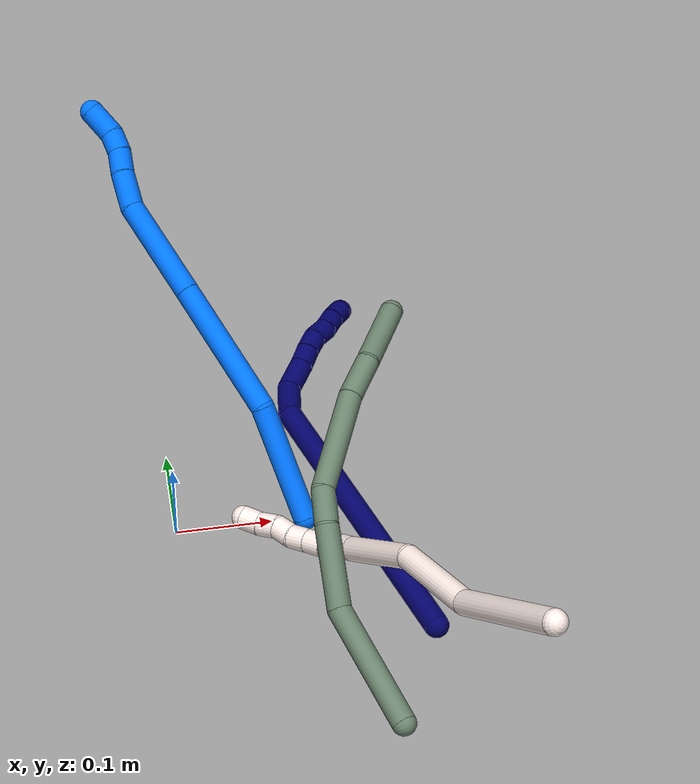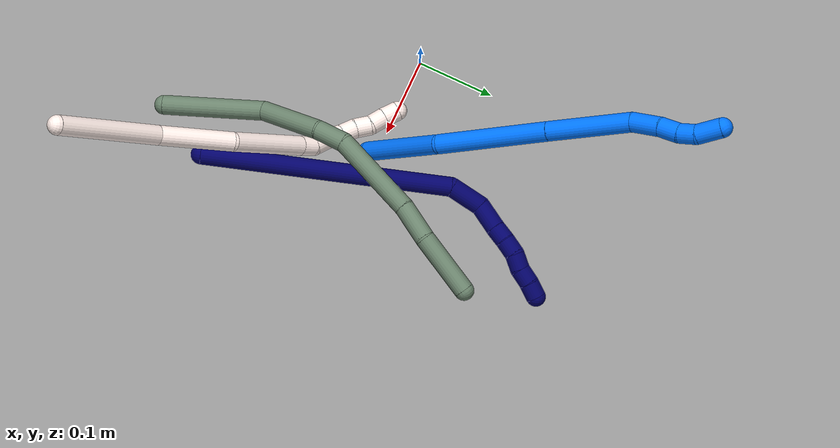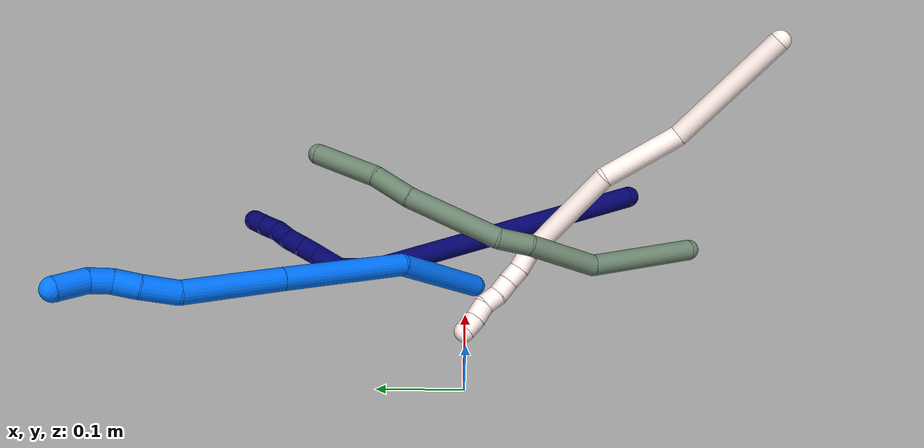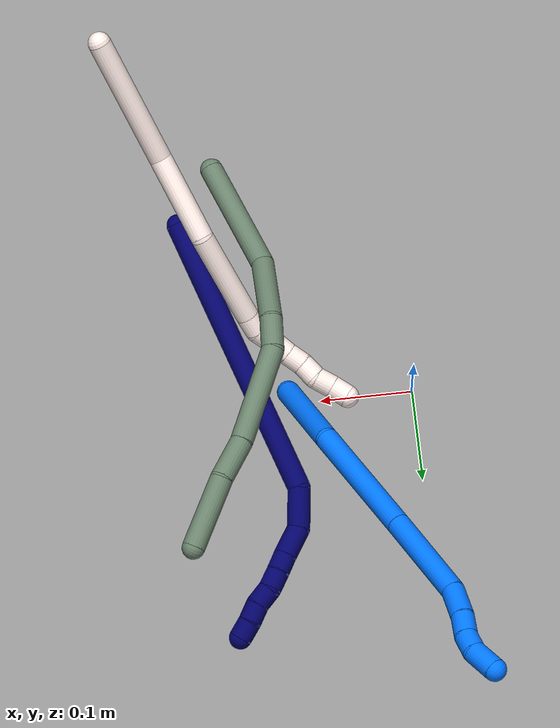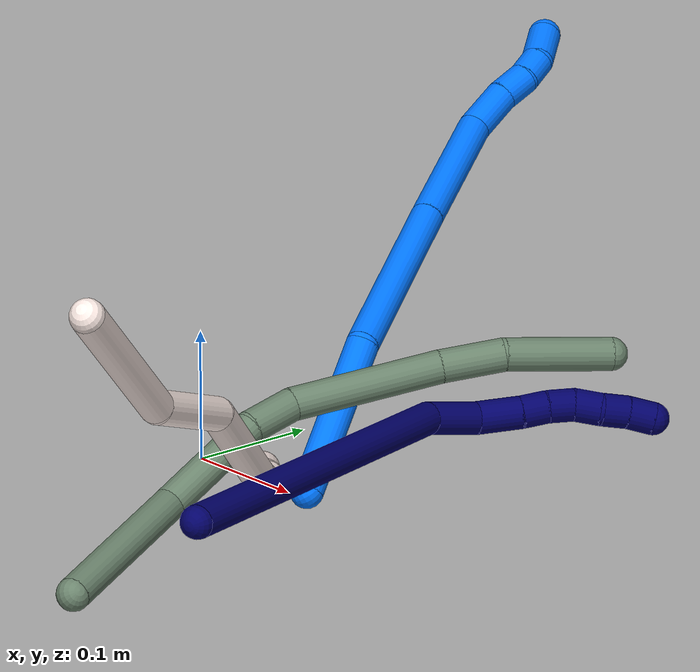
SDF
<sdf version="1.7">
 <world name="default">
  <model name="7">
   <static>0</static>
   <link name="7">
    <collision name="collision-cylinder-e_1_1_4">
     <pose>-0.000559 0.007345 -0.159491 -3.09557 -0.003502 0.151885</pose>
     <geometry><cylinder><radius>0.0125</radius><length>0.319322</length></cylinder></geometry>
     <surface>
      <friction><ode><mu>1.16</mu><mu2>1.16</mu2><slip1>0</slip1><slip2>0</slip2></ode></friction>
      <contact><ode><kp>1e+06</kp><kd>1</kd><max_vel>0</max_vel><min_depth>0.001</min_depth></ode></contact>
     </surface>
    </collision>
    <visual name="visual-cylinder-e_1_1_4">
     <pose>-0.000559 0.007345 -0.159491 -3.09557 -0.003502 0.151885</pose>
     <geometry><cylinder><radius>0.0125</radius><length>0.319322</length></cylinder></geometry>
     <material><ambient>0.003922 0 0.403922 1</ambient></material>
    </visual>
    <collision name="collision-cylinder-e_2_4_5">
     <pose>-0.00826 0.022249 -0.338441 -2.77106 -0.329612 1.45163</pose>
     <geometry><cylinder><radius>0.0125</radius><length>0.044129</length></cylinder></geometry>
     <surface>
      <friction><ode><mu>1.16</mu><mu2>1.16</mu2><slip1>0</slip1><slip2>0</slip2></ode></friction>
      <contact><ode><kp>1e+06</kp><kd>1</kd><max_vel>0</max_vel><min_depth>0.001</min_depth></ode></contact>
     </surface>
    </collision>
    <visual name="visual-cylinder-e_2_4_5">
     <pose>-0.00826 0.022249 -0.338441 -2.77106 -0.329612 1.45163</pose>
     <geometry><cylinder><radius>0.0125</radius><length>0.044129</length></cylinder></geometry>
     <material><ambient>0.003922 0 0.403922 1</ambient></material>
    </visual>
    <collision name="collision-cylinder-e_3_5_6">
     <pose>-0.028273 0.034045 -0.368767 -2.76991 -0.834641 2.33945</pose>
     <geometry><cylinder><radius>0.0125</radius><length>0.034738</length></cylinder></geometry>
     <surface>
      <friction><ode><mu>1.16</mu><mu2>1.16</mu2><slip1>0</slip1><slip2>0</slip2></ode></friction>
      <contact><ode><kp>1e+06</kp><kd>1</kd><max_vel>0</max_vel><min_depth>0.001</min_depth></ode></contact>
     </surface>
    </collision>
    <visual name="visual-cylinder-e_3_5_6">
     <pose>-0.028273 0.034045 -0.368767 -2.76991 -0.834641 2.33945</pose>
     <geometry><cylinder><radius>0.0125</radius><length>0.034738</length></cylinder></geometry>
     <material><ambient>0.003922 0 0.403922 1</ambient></material>
    </visual>
    <collision name="collision-cylinder-e_4_6_7">
     <pose>-0.048484 0.039988 -0.38634 -2.89233 -0.814722 2.57645</pose>
     <geometry><cylinder><radius>0.0125</radius><length>0.020175</length></cylinder></geometry>
     <surface>
      <friction><ode><mu>1.16</mu><mu2>1.16</mu2><slip1>0</slip1><slip2>0</slip2></ode></friction>
      <contact><ode><kp>1e+06</kp><kd>1</kd><max_vel>0</max_vel><min_depth>0.001</min_depth></ode></contact>
     </surface>
    </collision>
    <visual name="visual-cylinder-e_4_6_7">
     <pose>-0.048484 0.039988 -0.38634 -2.89233 -0.814722 2.57645</pose>
     <geometry><cylinder><radius>0.0125</radius><length>0.020175</length></cylinder></geometry>
     <material><ambient>0.003922 0 0.403922 1</ambient></material>
    </visual>
    <collision name="collision-cylinder-e_5_7_8">
     <pose>-0.063147 0.044737 -0.399657 -2.71025 -0.788656 2.17239</pose>
     <geometry><cylinder><radius>0.0125</radius><length>0.020649</length></cylinder></geometry>
     <surface>
      <friction><ode><mu>1.16</mu><mu2>1.16</mu2><slip1>0</slip1><slip2>0</slip2></ode></friction>
      <contact><ode><kp>1e+06</kp><kd>1</kd><max_vel>0</max_vel><min_depth>0.001</min_depth></ode></contact>
     </surface>
    </collision>
    <visual name="visual-cylinder-e_5_7_8">
     <pose>-0.063147 0.044737 -0.399657 -2.71025 -0.788656 2.17239</pose>
     <geometry><cylinder><radius>0.0125</radius><length>0.020649</length></cylinder></geometry>
     <material><ambient>0.003922 0 0.403922 1</ambient></material>
    </visual>
    <collision name="collision-cylinder-e_6_8_9">
     <pose>-0.078093 0.053043 -0.410633 -2.26324 -0.839534 1.51955</pose>
     <geometry><cylinder><radius>0.0125</radius><length>0.020481</length></cylinder></geometry>
     <surface>
      <friction><ode><mu>1.16</mu><mu2>1.16</mu2><slip1>0</slip1><slip2>0</slip2></ode></friction>
      <contact><ode><kp>1e+06</kp><kd>1</kd><max_vel>0</max_vel><min_depth>0.001</min_depth></ode></contact>
     </surface>
    </collision>
    <visual name="visual-cylinder-e_6_8_9">
     <pose>-0.078093 0.053043 -0.410633 -2.26324 -0.839534 1.51955</pose>
     <geometry><cylinder><radius>0.0125</radius><length>0.020481</length></cylinder></geometry>
     <material><ambient>0.003922 0 0.403922 1</ambient></material>
    </visual>
    <collision name="collision-cylinder-e_7_9_10">
     <pose>-0.092051 0.062962 -0.421445 -2.51606 -0.672778 1.64889</pose>
     <geometry><cylinder><radius>0.0125</radius><length>0.020332</length></cylinder></geometry>
     <surface>
      <friction><ode><mu>1.16</mu><mu2>1.16</mu2><slip1>0</slip1><slip2>0</slip2></ode></friction>
      <contact><ode><kp>1e+06</kp><kd>1</kd><max_vel>0</max_vel><min_depth>0.001</min_depth></ode></contact>
     </surface>
    </collision>
    <visual name="visual-cylinder-e_7_9_10">
     <pose>-0.092051 0.062962 -0.421445 -2.51606 -0.672778 1.64889</pose>
     <geometry><cylinder><radius>0.0125</radius><length>0.020332</length></cylinder></geometry>
     <material><ambient>0.003922 0 0.403922 1</ambient></material>
    </visual>
    <collision name="collision-cylinder-e_8_10_2">
     <pose>-0.104663 0.073406 -0.433261 -2.31883 -0.671627 1.34952</pose>
     <geometry><cylinder><radius>0.0125</radius><length>0.020175</length></cylinder></geometry>
     <surface>
      <friction><ode><mu>1.16</mu><mu2>1.16</mu2><slip1>0</slip1><slip2>0</slip2></ode></friction>
      <contact><ode><kp>1e+06</kp><kd>1</kd><max_vel>0</max_vel><min_depth>0.001</min_depth></ode></contact>
     </surface>
    </collision>
    <visual name="visual-cylinder-e_8_10_2">
     <pose>-0.104663 0.073406 -0.433261 -2.31883 -0.671627 1.34952</pose>
     <geometry><cylinder><radius>0.0125</radius><length>0.020175</length></cylinder></geometry>
     <material><ambient>0.003922 0 0.403922 1</ambient></material>
    </visual>
    <collision name="collision-sphere-2">
     <pose>-0.11094 0.079194 -0.438632 0 -0 0</pose>
     <geometry><sphere><radius>0.0125</radius></sphere></geometry>
     <surface>
      <friction><ode><mu>1.16</mu><mu2>1.16</mu2><slip1>0</slip1><slip2>0</slip2></ode></friction>
      <contact><ode><kp>1e+06</kp><kd>1</kd><max_vel>0</max_vel><min_depth>0.001</min_depth></ode></contact>
     </surface>
    </collision>
    <visual name="visual-sphere-2">
     <pose>-0.11094 0.079194 -0.438632 0 -0 0</pose>
     <geometry><sphere><radius>0.0125</radius></sphere></geometry>
     <material><ambient>0.003922 0 0.403922 1</ambient></material>
    </visual>
    <collision name="collision-sphere-10">
     <pose>-0.098386 0.067618 -0.42789 0 -0 0</pose>
     <geometry><sphere><radius>0.0125</radius></sphere></geometry>
     <surface>
      <friction><ode><mu>1.16</mu><mu2>1.16</mu2><slip1>0</slip1><slip2>0</slip2></ode></friction>
      <contact><ode><kp>1e+06</kp><kd>1</kd><max_vel>0</max_vel><min_depth>0.001</min_depth></ode></contact>
     </surface>
    </collision>
    <visual name="visual-sphere-10">
     <pose>-0.098386 0.067618 -0.42789 0 -0 0</pose>
     <geometry><sphere><radius>0.0125</radius></sphere></geometry>
     <material><ambient>0.003922 0 0.403922 1</ambient></material>
    </visual>
    <collision name="collision-sphere-9">
     <pose>-0.085716 0.058307 -0.414999 0 -0 0</pose>
     <geometry><sphere><radius>0.0125</radius></sphere></geometry>
     <surface>
      <friction><ode><mu>1.16</mu><mu2>1.16</mu2><slip1>0</slip1><slip2>0</slip2></ode></friction>
      <contact><ode><kp>1e+06</kp><kd>1</kd><max_vel>0</max_vel><min_depth>0.001</min_depth></ode></contact>
     </surface>
    </collision>
    <visual name="visual-sphere-9">
     <pose>-0.085716 0.058307 -0.414999 0 -0 0</pose>
     <geometry><sphere><radius>0.0125</radius></sphere></geometry>
     <material><ambient>0.003922 0 0.403922 1</ambient></material>
    </visual>
    <collision name="collision-sphere-4">
     <pose>-0.001118 0.01469 -0.318982 0 -0 0</pose>
     <geometry><sphere><radius>0.0125</radius></sphere></geometry>
     <surface>
      <friction><ode><mu>1.16</mu><mu2>1.16</mu2><slip1>0</slip1><slip2>0</slip2></ode></friction>
      <contact><ode><kp>1e+06</kp><kd>1</kd><max_vel>0</max_vel><min_depth>0.001</min_depth></ode></contact>
     </surface>
    </collision>
    <visual name="visual-sphere-4">
     <pose>-0.001118 0.01469 -0.318982 0 -0 0</pose>
     <geometry><sphere><radius>0.0125</radius></sphere></geometry>
     <material><ambient>0.003922 0 0.403922 1</ambient></material>
    </visual>
    <collision name="collision-sphere-1">
     <geometry><sphere><radius>0.0125</radius></sphere></geometry>
     <surface>
      <friction><ode><mu>1.16</mu><mu2>1.16</mu2><slip1>0</slip1><slip2>0</slip2></ode></friction>
      <contact><ode><kp>1e+06</kp><kd>1</kd><max_vel>0</max_vel><min_depth>0.001</min_depth></ode></contact>
     </surface>
    </collision>
    <visual name="visual-sphere-1">
     <geometry><sphere><radius>0.0125</radius></sphere></geometry>
     <material><ambient>0.003922 0 0.403922 1</ambient></material>
    </visual>
    <collision name="collision-sphere-8">
     <pose>-0.070471 0.047779 -0.406267 0 -0 0</pose>
     <geometry><sphere><radius>0.0125</radius></sphere></geometry>
     <surface>
      <friction><ode><mu>1.16</mu><mu2>1.16</mu2><slip1>0</slip1><slip2>0</slip2></ode></friction>
      <contact><ode><kp>1e+06</kp><kd>1</kd><max_vel>0</max_vel><min_depth>0.001</min_depth></ode></contact>
     </surface>
    </collision>
    <visual name="visual-sphere-8">
     <pose>-0.070471 0.047779 -0.406267 0 -0 0</pose>
     <geometry><sphere><radius>0.0125</radius></sphere></geometry>
     <material><ambient>0.003922 0 0.403922 1</ambient></material>
    </visual>
    <collision name="collision-sphere-5">
     <pose>-0.015402 0.029809 -0.357901 0 -0 0</pose>
     <geometry><sphere><radius>0.0125</radius></sphere></geometry>
     <surface>
      <friction><ode><mu>1.16</mu><mu2>1.16</mu2><slip1>0</slip1><slip2>0</slip2></ode></friction>
      <contact><ode><kp>1e+06</kp><kd>1</kd><max_vel>0</max_vel><min_depth>0.001</min_depth></ode></contact>
     </surface>
    </collision>
    <visual name="visual-sphere-5">
     <pose>-0.015402 0.029809 -0.357901 0 -0 0</pose>
     <geometry><sphere><radius>0.0125</radius></sphere></geometry>
     <material><ambient>0.003922 0 0.403922 1</ambient></material>
    </visual>
    <collision name="collision-sphere-6">
     <pose>-0.041145 0.03828 -0.379633 0 -0 0</pose>
     <geometry><sphere><radius>0.0125</radius></sphere></geometry>
     <surface>
      <friction><ode><mu>1.16</mu><mu2>1.16</mu2><slip1>0</slip1><slip2>0</slip2></ode></friction>
      <contact><ode><kp>1e+06</kp><kd>1</kd><max_vel>0</max_vel><min_depth>0.001</min_depth></ode></contact>
     </surface>
    </collision>
    <visual name="visual-sphere-6">
     <pose>-0.041145 0.03828 -0.379633 0 -0 0</pose>
     <geometry><sphere><radius>0.0125</radius></sphere></geometry>
     <material><ambient>0.003922 0 0.403922 1</ambient></material>
    </visual>
    <collision name="collision-sphere-7">
     <pose>-0.055823 0.041695 -0.393047 0 -0 0</pose>
     <geometry><sphere><radius>0.0125</radius></sphere></geometry>
     <surface>
      <friction><ode><mu>1.16</mu><mu2>1.16</mu2><slip1>0</slip1><slip2>0</slip2></ode></friction>
      <contact><ode><kp>1e+06</kp><kd>1</kd><max_vel>0</max_vel><min_depth>0.001</min_depth></ode></contact>
     </surface>
    </collision>
    <visual name="visual-sphere-7">
     <pose>-0.055823 0.041695 -0.393047 0 -0 0</pose>
     <geometry><sphere><radius>0.0125</radius></sphere></geometry>
     <material><ambient>0.003922 0 0.403922 1</ambient></material>
    </visual>
    <inertial>
     <pose>-0.01878 0.020176 -0.240882 0 -0 0</pose>
     <mass>0.5</mass>
     <inertia>
      <ixx>0.003111</ixx>
      <ixy>0</ixy>
      <ixz>0</ixz>
      <iyy>-0.002249</iyy>
      <iyz>0</iyz>
      <izz>-0.000146</izz>
     </inertia>
    </inertial>
   </link>
   <pose>0.234204 -0.196634 0.060926 -1.55355 0.431595 -2.79576</pose>
  </model>
  <model name="11">
   <static>0</static>
   <link name="11">
    <collision name="collision-cylinder-e_1_1_4">
     <pose>0.000465 -0.002417 -0.075487 3.10958 0.006163 0.380352</pose>
     <geometry><cylinder><radius>0.0125</radius><length>0.151054</length></cylinder></geometry>
     <surface>
      <friction><ode><mu>1.16</mu><mu2>1.16</mu2><slip1>0</slip1><slip2>0</slip2></ode></friction>
      <contact><ode><kp>1e+06</kp><kd>1</kd><max_vel>0</max_vel><min_depth>0.001</min_depth></ode></contact>
     </surface>
    </collision>
    <visual name="visual-cylinder-e_1_1_4">
     <pose>0.000465 -0.002417 -0.075487 3.10958 0.006163 0.380352</pose>
     <geometry><cylinder><radius>0.0125</radius><length>0.151054</length></cylinder></geometry>
     <material><ambient>1 0.933333 0.909804 1</ambient></material>
    </visual>
    <collision name="collision-cylinder-e_2_4_5">
     <pose>-0.000202 0.011358 -0.196398 -2.79916 -0.023484 0.135615</pose>
     <geometry><cylinder><radius>0.0125</radius><length>0.096476</length></cylinder></geometry>
     <surface>
      <friction><ode><mu>1.16</mu><mu2>1.16</mu2><slip1>0</slip1><slip2>0</slip2></ode></friction>
      <contact><ode><kp>1e+06</kp><kd>1</kd><max_vel>0</max_vel><min_depth>0.001</min_depth></ode></contact>
     </surface>
    </collision>
    <visual name="visual-cylinder-e_2_4_5">
     <pose>-0.000202 0.011358 -0.196398 -2.79916 -0.023484 0.135615</pose>
     <geometry><cylinder><radius>0.0125</radius><length>0.096476</length></cylinder></geometry>
     <material><ambient>1 0.933333 0.909804 1</ambient></material>
    </visual>
    <collision name="collision-cylinder-e_3_5_6">
     <pose>-0.002792 0.02523 -0.295795 3.09861 -0.026977 -1.12079</pose>
     <geometry><cylinder><radius>0.0125</radius><length>0.108084</length></cylinder></geometry>
     <surface>
      <friction><ode><mu>1.16</mu><mu2>1.16</mu2><slip1>0</slip1><slip2>0</slip2></ode></friction>
      <contact><ode><kp>1e+06</kp><kd>1</kd><max_vel>0</max_vel><min_depth>0.001</min_depth></ode></contact>
     </surface>
    </collision>
    <visual name="visual-cylinder-e_3_5_6">
     <pose>-0.002792 0.02523 -0.295795 3.09861 -0.026977 -1.12079</pose>
     <geometry><cylinder><radius>0.0125</radius><length>0.108084</length></cylinder></geometry>
     <material><ambient>1 0.933333 0.909804 1</ambient></material>
    </visual>
    <collision name="collision-cylinder-e_4_6_7">
     <pose>-0.004882 0.023265 -0.360118 -3.10708 -0.060947 2.11135</pose>
     <geometry><cylinder><radius>0.0125</radius><length>0.020752</length></cylinder></geometry>
     <surface>
      <friction><ode><mu>1.16</mu><mu2>1.16</mu2><slip1>0</slip1><slip2>0</slip2></ode></friction>
      <contact><ode><kp>1e+06</kp><kd>1</kd><max_vel>0</max_vel><min_depth>0.001</min_depth></ode></contact>
     </surface>
    </collision>
    <visual name="visual-cylinder-e_4_6_7">
     <pose>-0.004882 0.023265 -0.360118 -3.10708 -0.060947 2.11135</pose>
     <geometry><cylinder><radius>0.0125</radius><length>0.020752</length></cylinder></geometry>
     <material><ambient>1 0.933333 0.909804 1</ambient></material>
    </visual>
    <collision name="collision-cylinder-e_5_7_8">
     <pose>-0.010526 0.023761 -0.380404 -3.12773 -0.467146 3.08332</pose>
     <geometry><cylinder><radius>0.0125</radius><length>0.022257</length></cylinder></geometry>
     <surface>
      <friction><ode><mu>1.16</mu><mu2>1.16</mu2><slip1>0</slip1><slip2>0</slip2></ode></friction>
      <contact><ode><kp>1e+06</kp><kd>1</kd><max_vel>0</max_vel><min_depth>0.001</min_depth></ode></contact>
     </surface>
    </collision>
    <visual name="visual-cylinder-e_5_7_8">
     <pose>-0.010526 0.023761 -0.380404 -3.12773 -0.467146 3.08332</pose>
     <geometry><cylinder><radius>0.0125</radius><length>0.022257</length></cylinder></geometry>
     <material><ambient>1 0.933333 0.909804 1</ambient></material>
    </visual>
    <collision name="collision-cylinder-e_6_8_9">
     <pose>-0.01973 0.026402 -0.399327 -2.86993 -0.422315 2.00636</pose>
     <geometry><cylinder><radius>0.0125</radius><length>0.020458</length></cylinder></geometry>
     <surface>
      <friction><ode><mu>1.16</mu><mu2>1.16</mu2><slip1>0</slip1><slip2>0</slip2></ode></friction>
      <contact><ode><kp>1e+06</kp><kd>1</kd><max_vel>0</max_vel><min_depth>0.001</min_depth></ode></contact>
     </surface>
    </collision>
    <visual name="visual-cylinder-e_6_8_9">
     <pose>-0.01973 0.026402 -0.399327 -2.86993 -0.422315 2.00636</pose>
     <geometry><cylinder><radius>0.0125</radius><length>0.020458</length></cylinder></geometry>
     <material><ambient>1 0.933333 0.909804 1</ambient></material>
    </visual>
    <collision name="collision-cylinder-e_7_9_10">
     <pose>-0.02872 0.031422 -0.416816 -2.8538 -0.496051 2.10218</pose>
     <geometry><cylinder><radius>0.0125</radius><length>0.02016</length></cylinder></geometry>
     <surface>
      <friction><ode><mu>1.16</mu><mu2>1.16</mu2><slip1>0</slip1><slip2>0</slip2></ode></friction>
      <contact><ode><kp>1e+06</kp><kd>1</kd><max_vel>0</max_vel><min_depth>0.001</min_depth></ode></contact>
     </surface>
    </collision>
    <visual name="visual-cylinder-e_7_9_10">
     <pose>-0.02872 0.031422 -0.416816 -2.8538 -0.496051 2.10218</pose>
     <geometry><cylinder><radius>0.0125</radius><length>0.02016</length></cylinder></geometry>
     <material><ambient>1 0.933333 0.909804 1</ambient></material>
    </visual>
    <collision name="collision-cylinder-e_8_10_11">
     <pose>-0.036659 0.03869 -0.433684 -2.62514 -0.315486 1.08412</pose>
     <geometry><cylinder><radius>0.0125</radius><length>0.020244</length></cylinder></geometry>
     <surface>
      <friction><ode><mu>1.16</mu><mu2>1.16</mu2><slip1>0</slip1><slip2>0</slip2></ode></friction>
      <contact><ode><kp>1e+06</kp><kd>1</kd><max_vel>0</max_vel><min_depth>0.001</min_depth></ode></contact>
     </surface>
    </collision>
    <visual name="visual-cylinder-e_8_10_11">
     <pose>-0.036659 0.03869 -0.433684 -2.62514 -0.315486 1.08412</pose>
     <geometry><cylinder><radius>0.0125</radius><length>0.020244</length></cylinder></geometry>
     <material><ambient>1 0.933333 0.909804 1</ambient></material>
    </visual>
    <collision name="collision-cylinder-e_9_11_12">
     <pose>-0.045612 0.04547 -0.450241 -2.89883 -0.603289 2.39433</pose>
     <geometry><cylinder><radius>0.0125</radius><length>0.020491</length></cylinder></geometry>
     <surface>
      <friction><ode><mu>1.16</mu><mu2>1.16</mu2><slip1>0</slip1><slip2>0</slip2></ode></friction>
      <contact><ode><kp>1e+06</kp><kd>1</kd><max_vel>0</max_vel><min_depth>0.001</min_depth></ode></contact>
     </surface>
    </collision>
    <visual name="visual-cylinder-e_9_11_12">
     <pose>-0.045612 0.04547 -0.450241 -2.89883 -0.603289 2.39433</pose>
     <geometry><cylinder><radius>0.0125</radius><length>0.020491</length></cylinder></geometry>
     <material><ambient>1 0.933333 0.909804 1</ambient></material>
    </visual>
    <collision name="collision-cylinder-e_10_12_2">
     <pose>-0.056758 0.051373 -0.465965 -2.6665 -0.561819 1.74532</pose>
     <geometry><cylinder><radius>0.0125</radius><length>0.020024</length></cylinder></geometry>
     <surface>
      <friction><ode><mu>1.16</mu><mu2>1.16</mu2><slip1>0</slip1><slip2>0</slip2></ode></friction>
      <contact><ode><kp>1e+06</kp><kd>1</kd><max_vel>0</max_vel><min_depth>0.001</min_depth></ode></contact>
     </surface>
    </collision>
    <visual name="visual-cylinder-e_10_12_2">
     <pose>-0.056758 0.051373 -0.465965 -2.6665 -0.561819 1.74532</pose>
     <geometry><cylinder><radius>0.0125</radius><length>0.020024</length></cylinder></geometry>
     <material><ambient>1 0.933333 0.909804 1</ambient></material>
    </visual>
    <collision name="collision-sphere-2">
     <pose>-0.062092 0.055249 -0.4735 0 -0 0</pose>
     <geometry><sphere><radius>0.0125</radius></sphere></geometry>
     <surface>
      <friction><ode><mu>1.16</mu><mu2>1.16</mu2><slip1>0</slip1><slip2>0</slip2></ode></friction>
      <contact><ode><kp>1e+06</kp><kd>1</kd><max_vel>0</max_vel><min_depth>0.001</min_depth></ode></contact>
     </surface>
    </collision>
    <visual name="visual-sphere-2">
     <pose>-0.062092 0.055249 -0.4735 0 -0 0</pose>
     <geometry><sphere><radius>0.0125</radius></sphere></geometry>
     <material><ambient>1 0.933333 0.909804 1</ambient></material>
    </visual>
    <collision name="collision-sphere-12">
     <pose>-0.051425 0.047498 -0.458431 0 -0 0</pose>
     <geometry><sphere><radius>0.0125</radius></sphere></geometry>
     <surface>
      <friction><ode><mu>1.16</mu><mu2>1.16</mu2><slip1>0</slip1><slip2>0</slip2></ode></friction>
      <contact><ode><kp>1e+06</kp><kd>1</kd><max_vel>0</max_vel><min_depth>0.001</min_depth></ode></contact>
     </surface>
    </collision>
    <visual name="visual-sphere-12">
     <pose>-0.051425 0.047498 -0.458431 0 -0 0</pose>
     <geometry><sphere><radius>0.0125</radius></sphere></geometry>
     <material><ambient>1 0.933333 0.909804 1</ambient></material>
    </visual>
    <collision name="collision-sphere-11">
     <pose>-0.039799 0.043441 -0.442052 0 -0 0</pose>
     <geometry><sphere><radius>0.0125</radius></sphere></geometry>
     <surface>
      <friction><ode><mu>1.16</mu><mu2>1.16</mu2><slip1>0</slip1><slip2>0</slip2></ode></friction>
      <contact><ode><kp>1e+06</kp><kd>1</kd><max_vel>0</max_vel><min_depth>0.001</min_depth></ode></contact>
     </surface>
    </collision>
    <visual name="visual-sphere-11">
     <pose>-0.039799 0.043441 -0.442052 0 -0 0</pose>
     <geometry><sphere><radius>0.0125</radius></sphere></geometry>
     <material><ambient>1 0.933333 0.909804 1</ambient></material>
    </visual>
    <collision name="collision-sphere-10">
     <pose>-0.033518 0.033938 -0.425317 0 -0 0</pose>
     <geometry><sphere><radius>0.0125</radius></sphere></geometry>
     <surface>
      <friction><ode><mu>1.16</mu><mu2>1.16</mu2><slip1>0</slip1><slip2>0</slip2></ode></friction>
      <contact><ode><kp>1e+06</kp><kd>1</kd><max_vel>0</max_vel><min_depth>0.001</min_depth></ode></contact>
     </surface>
    </collision>
    <visual name="visual-sphere-10">
     <pose>-0.033518 0.033938 -0.425317 0 -0 0</pose>
     <geometry><sphere><radius>0.0125</radius></sphere></geometry>
     <material><ambient>1 0.933333 0.909804 1</ambient></material>
    </visual>
    <collision name="collision-sphere-9">
     <pose>-0.023923 0.028906 -0.408316 0 -0 0</pose>
     <geometry><sphere><radius>0.0125</radius></sphere></geometry>
     <surface>
      <friction><ode><mu>1.16</mu><mu2>1.16</mu2><slip1>0</slip1><slip2>0</slip2></ode></friction>
      <contact><ode><kp>1e+06</kp><kd>1</kd><max_vel>0</max_vel><min_depth>0.001</min_depth></ode></contact>
     </surface>
    </collision>
    <visual name="visual-sphere-9">
     <pose>-0.023923 0.028906 -0.408316 0 -0 0</pose>
     <geometry><sphere><radius>0.0125</radius></sphere></geometry>
     <material><ambient>1 0.933333 0.909804 1</ambient></material>
    </visual>
    <collision name="collision-sphere-4">
     <pose>0.000931 -0.004835 -0.150973 0 -0 0</pose>
     <geometry><sphere><radius>0.0125</radius></sphere></geometry>
     <surface>
      <friction><ode><mu>1.16</mu><mu2>1.16</mu2><slip1>0</slip1><slip2>0</slip2></ode></friction>
      <contact><ode><kp>1e+06</kp><kd>1</kd><max_vel>0</max_vel><min_depth>0.001</min_depth></ode></contact>
     </surface>
    </collision>
    <visual name="visual-sphere-4">
     <pose>0.000931 -0.004835 -0.150973 0 -0 0</pose>
     <geometry><sphere><radius>0.0125</radius></sphere></geometry>
     <material><ambient>1 0.933333 0.909804 1</ambient></material>
    </visual>
    <collision name="collision-sphere-1">
     <geometry><sphere><radius>0.0125</radius></sphere></geometry>
     <surface>
      <friction><ode><mu>1.16</mu><mu2>1.16</mu2><slip1>0</slip1><slip2>0</slip2></ode></friction>
      <contact><ode><kp>1e+06</kp><kd>1</kd><max_vel>0</max_vel><min_depth>0.001</min_depth></ode></contact>
     </surface>
    </collision>
    <visual name="visual-sphere-1">
     <geometry><sphere><radius>0.0125</radius></sphere></geometry>
     <material><ambient>1 0.933333 0.909804 1</ambient></material>
    </visual>
    <collision name="collision-sphere-8">
     <pose>-0.015537 0.023898 -0.390339 0 -0 0</pose>
     <geometry><sphere><radius>0.0125</radius></sphere></geometry>
     <surface>
      <friction><ode><mu>1.16</mu><mu2>1.16</mu2><slip1>0</slip1><slip2>0</slip2></ode></friction>
      <contact><ode><kp>1e+06</kp><kd>1</kd><max_vel>0</max_vel><min_depth>0.001</min_depth></ode></contact>
     </surface>
    </collision>
    <visual name="visual-sphere-8">
     <pose>-0.015537 0.023898 -0.390339 0 -0 0</pose>
     <geometry><sphere><radius>0.0125</radius></sphere></geometry>
     <material><ambient>1 0.933333 0.909804 1</ambient></material>
    </visual>
    <collision name="collision-sphere-5">
     <pose>-0.001335 0.027551 -0.241823 0 -0 0</pose>
     <geometry><sphere><radius>0.0125</radius></sphere></geometry>
     <surface>
      <friction><ode><mu>1.16</mu><mu2>1.16</mu2><slip1>0</slip1><slip2>0</slip2></ode></friction>
      <contact><ode><kp>1e+06</kp><kd>1</kd><max_vel>0</max_vel><min_depth>0.001</min_depth></ode></contact>
     </surface>
    </collision>
    <visual name="visual-sphere-5">
     <pose>-0.001335 0.027551 -0.241823 0 -0 0</pose>
     <geometry><sphere><radius>0.0125</radius></sphere></geometry>
     <material><ambient>1 0.933333 0.909804 1</ambient></material>
    </visual>
    <collision name="collision-sphere-6">
     <pose>-0.00425 0.022908 -0.349768 0 -0 0</pose>
     <geometry><sphere><radius>0.0125</radius></sphere></geometry>
     <surface>
      <friction><ode><mu>1.16</mu><mu2>1.16</mu2><slip1>0</slip1><slip2>0</slip2></ode></friction>
      <contact><ode><kp>1e+06</kp><kd>1</kd><max_vel>0</max_vel><min_depth>0.001</min_depth></ode></contact>
     </surface>
    </collision>
    <visual name="visual-sphere-6">
     <pose>-0.00425 0.022908 -0.349768 0 -0 0</pose>
     <geometry><sphere><radius>0.0125</radius></sphere></geometry>
     <material><ambient>1 0.933333 0.909804 1</ambient></material>
    </visual>
    <collision name="collision-sphere-7">
     <pose>-0.005514 0.023623 -0.370469 0 -0 0</pose>
     <geometry><sphere><radius>0.0125</radius></sphere></geometry>
     <surface>
      <friction><ode><mu>1.16</mu><mu2>1.16</mu2><slip1>0</slip1><slip2>0</slip2></ode></friction>
      <contact><ode><kp>1e+06</kp><kd>1</kd><max_vel>0</max_vel><min_depth>0.001</min_depth></ode></contact>
     </surface>
    </collision>
    <visual name="visual-sphere-7">
     <pose>-0.005514 0.023623 -0.370469 0 -0 0</pose>
     <geometry><sphere><radius>0.0125</radius></sphere></geometry>
     <material><ambient>1 0.933333 0.909804 1</ambient></material>
    </visual>
    <inertial>
     <pose>-0.008765 0.016773 -0.244339 0 -0 0</pose>
     <mass>0.5</mass>
     <inertia>
      <ixx>0.000417</ixx>
      <ixy>0</ixy>
      <ixz>0</ixz>
      <iyy>-0.000355</iyy>
      <iyz>0</iyz>
      <izz>-4.4e-05</izz>
     </inertia>
    </inertial>
   </link>
   <pose>0.299003 -0.342713 0.258576 0.866284 0.198957 0.30912</pose>
  </model>
  <model name="14">
   <static>0</static>
   <link name="14">
    <collision name="collision-cylinder-e_1_1_4">
     <pose>-0.02722 0.031948 0.046031 -0.606729 -0.452229 0.143774</pose>
     <geometry><cylinder><radius>0.0125</radius><length>0.124587</length></cylinder></geometry>
     <surface>
      <friction><ode><mu>1.16</mu><mu2>1.16</mu2><slip1>0</slip1><slip2>0</slip2></ode></friction>
      <contact><ode><kp>1e+06</kp><kd>1</kd><max_vel>0</max_vel><min_depth>0.001</min_depth></ode></contact>
     </surface>
    </collision>
    <visual name="visual-cylinder-e_1_1_4">
     <pose>-0.02722 0.031948 0.046031 -0.606729 -0.452229 0.143774</pose>
     <geometry><cylinder><radius>0.0125</radius><length>0.124587</length></cylinder></geometry>
     <material><ambient>0 0.462745 1 1</ambient></material>
    </visual>
    <collision name="collision-cylinder-e_2_4_5">
     <pose>-0.067832 0.119528 0.138174 -0.878692 -0.18325 0.086312</pose>
     <geometry><cylinder><radius>0.0125</radius><length>0.146978</length></cylinder></geometry>
     <surface>
      <friction><ode><mu>1.16</mu><mu2>1.16</mu2><slip1>0</slip1><slip2>0</slip2></ode></friction>
      <contact><ode><kp>1e+06</kp><kd>1</kd><max_vel>0</max_vel><min_depth>0.001</min_depth></ode></contact>
     </surface>
    </collision>
    <visual name="visual-cylinder-e_2_4_5">
     <pose>-0.067832 0.119528 0.138174 -0.878692 -0.18325 0.086312</pose>
     <geometry><cylinder><radius>0.0125</radius><length>0.146978</length></cylinder></geometry>
     <material><ambient>0 0.462745 1 1</ambient></material>
    </visual>
    <collision name="collision-cylinder-e_3_5_6">
     <pose>-0.090008 0.216925 0.218328 -0.886922 -0.16161 0.076897</pose>
     <geometry><cylinder><radius>0.0125</radius><length>0.109183</length></cylinder></geometry>
     <surface>
      <friction><ode><mu>1.16</mu><mu2>1.16</mu2><slip1>0</slip1><slip2>0</slip2></ode></friction>
      <contact><ode><kp>1e+06</kp><kd>1</kd><max_vel>0</max_vel><min_depth>0.001</min_depth></ode></contact>
     </surface>
    </collision>
    <visual name="visual-cylinder-e_3_5_6">
     <pose>-0.090008 0.216925 0.218328 -0.886922 -0.16161 0.076897</pose>
     <geometry><cylinder><radius>0.0125</radius><length>0.109183</length></cylinder></geometry>
     <material><ambient>0 0.462745 1 1</ambient></material>
    </visual>
    <collision name="collision-cylinder-e_4_6_7">
     <pose>-0.100895 0.269382 0.268215 -0.593641 -0.109558 0.033539</pose>
     <geometry><cylinder><radius>0.0125</radius><length>0.038464</length></cylinder></geometry>
     <surface>
      <friction><ode><mu>1.16</mu><mu2>1.16</mu2><slip1>0</slip1><slip2>0</slip2></ode></friction>
      <contact><ode><kp>1e+06</kp><kd>1</kd><max_vel>0</max_vel><min_depth>0.001</min_depth></ode></contact>
     </surface>
    </collision>
    <visual name="visual-cylinder-e_4_6_7">
     <pose>-0.100895 0.269382 0.268215 -0.593641 -0.109558 0.033539</pose>
     <geometry><cylinder><radius>0.0125</radius><length>0.038464</length></cylinder></geometry>
     <material><ambient>0 0.462745 1 1</ambient></material>
    </visual>
    <collision name="collision-cylinder-e_5_7_8">
     <pose>-0.10271 0.286321 0.295198 -0.511083 0.022576 -0.005898</pose>
     <geometry><cylinder><radius>0.0125</radius><length>0.025543</length></cylinder></geometry>
     <surface>
      <friction><ode><mu>1.16</mu><mu2>1.16</mu2><slip1>0</slip1><slip2>0</slip2></ode></friction>
      <contact><ode><kp>1e+06</kp><kd>1</kd><max_vel>0</max_vel><min_depth>0.001</min_depth></ode></contact>
     </surface>
    </collision>
    <visual name="visual-cylinder-e_5_7_8">
     <pose>-0.10271 0.286321 0.295198 -0.511083 0.022576 -0.005898</pose>
     <geometry><cylinder><radius>0.0125</radius><length>0.025543</length></cylinder></geometry>
     <material><ambient>0 0.462745 1 1</ambient></material>
    </visual>
    <collision name="collision-cylinder-e_6_8_9">
     <pose>-0.103568 0.299818 0.3147 -0.714169 -0.103203 0.038532</pose>
     <geometry><cylinder><radius>0.0125</radius><length>0.022261</length></cylinder></geometry>
     <surface>
      <friction><ode><mu>1.16</mu><mu2>1.16</mu2><slip1>0</slip1><slip2>0</slip2></ode></friction>
      <contact><ode><kp>1e+06</kp><kd>1</kd><max_vel>0</max_vel><min_depth>0.001</min_depth></ode></contact>
     </surface>
    </collision>
    <visual name="visual-cylinder-e_6_8_9">
     <pose>-0.103568 0.299818 0.3147 -0.714169 -0.103203 0.038532</pose>
     <geometry><cylinder><radius>0.0125</radius><length>0.022261</length></cylinder></geometry>
     <material><ambient>0 0.462745 1 1</ambient></material>
    </visual>
    <collision name="collision-cylinder-e_7_9_2">
     <pose>-0.108494 0.320807 0.331373 -1.02694 -0.231234 0.130795</pose>
     <geometry><cylinder><radius>0.0125</radius><length>0.032985</length></cylinder></geometry>
     <surface>
      <friction><ode><mu>1.16</mu><mu2>1.16</mu2><slip1>0</slip1><slip2>0</slip2></ode></friction>
      <contact><ode><kp>1e+06</kp><kd>1</kd><max_vel>0</max_vel><min_depth>0.001</min_depth></ode></contact>
     </surface>
    </collision>
    <visual name="visual-cylinder-e_7_9_2">
     <pose>-0.108494 0.320807 0.331373 -1.02694 -0.231234 0.130795</pose>
     <geometry><cylinder><radius>0.0125</radius><length>0.032985</length></cylinder></geometry>
     <material><ambient>0 0.462745 1 1</ambient></material>
    </visual>
    <collision name="collision-sphere-2">
     <pose>-0.112274 0.334544 0.339679 0 -0 0</pose>
     <geometry><sphere><radius>0.0125</radius></sphere></geometry>
     <surface>
      <friction><ode><mu>1.16</mu><mu2>1.16</mu2><slip1>0</slip1><slip2>0</slip2></ode></friction>
      <contact><ode><kp>1e+06</kp><kd>1</kd><max_vel>0</max_vel><min_depth>0.001</min_depth></ode></contact>
     </surface>
    </collision>
    <visual name="visual-sphere-2">
     <pose>-0.112274 0.334544 0.339679 0 -0 0</pose>
     <geometry><sphere><radius>0.0125</radius></sphere></geometry>
     <material><ambient>0 0.462745 1 1</ambient></material>
    </visual>
    <collision name="collision-sphere-9">
     <pose>-0.104715 0.307069 0.323066 0 -0 0</pose>
     <geometry><sphere><radius>0.0125</radius></sphere></geometry>
     <surface>
      <friction><ode><mu>1.16</mu><mu2>1.16</mu2><slip1>0</slip1><slip2>0</slip2></ode></friction>
      <contact><ode><kp>1e+06</kp><kd>1</kd><max_vel>0</max_vel><min_depth>0.001</min_depth></ode></contact>
     </surface>
    </collision>
    <visual name="visual-sphere-9">
     <pose>-0.104715 0.307069 0.323066 0 -0 0</pose>
     <geometry><sphere><radius>0.0125</radius></sphere></geometry>
     <material><ambient>0 0.462745 1 1</ambient></material>
    </visual>
    <collision name="collision-sphere-4">
     <pose>-0.054441 0.063896 0.092061 0 -0 0</pose>
     <geometry><sphere><radius>0.0125</radius></sphere></geometry>
     <surface>
      <friction><ode><mu>1.16</mu><mu2>1.16</mu2><slip1>0</slip1><slip2>0</slip2></ode></friction>
      <contact><ode><kp>1e+06</kp><kd>1</kd><max_vel>0</max_vel><min_depth>0.001</min_depth></ode></contact>
     </surface>
    </collision>
    <visual name="visual-sphere-4">
     <pose>-0.054441 0.063896 0.092061 0 -0 0</pose>
     <geometry><sphere><radius>0.0125</radius></sphere></geometry>
     <material><ambient>0 0.462745 1 1</ambient></material>
    </visual>
    <collision name="collision-sphere-1">
     <geometry><sphere><radius>0.0125</radius></sphere></geometry>
     <surface>
      <friction><ode><mu>1.16</mu><mu2>1.16</mu2><slip1>0</slip1><slip2>0</slip2></ode></friction>
      <contact><ode><kp>1e+06</kp><kd>1</kd><max_vel>0</max_vel><min_depth>0.001</min_depth></ode></contact>
     </surface>
    </collision>
    <visual name="visual-sphere-1">
     <geometry><sphere><radius>0.0125</radius></sphere></geometry>
     <material><ambient>0 0.462745 1 1</ambient></material>
    </visual>
    <collision name="collision-sphere-8">
     <pose>-0.102421 0.292566 0.306334 0 -0 0</pose>
     <geometry><sphere><radius>0.0125</radius></sphere></geometry>
     <surface>
      <friction><ode><mu>1.16</mu><mu2>1.16</mu2><slip1>0</slip1><slip2>0</slip2></ode></friction>
      <contact><ode><kp>1e+06</kp><kd>1</kd><max_vel>0</max_vel><min_depth>0.001</min_depth></ode></contact>
     </surface>
    </collision>
    <visual name="visual-sphere-8">
     <pose>-0.102421 0.292566 0.306334 0 -0 0</pose>
     <geometry><sphere><radius>0.0125</radius></sphere></geometry>
     <material><ambient>0 0.462745 1 1</ambient></material>
    </visual>
    <collision name="collision-sphere-5">
     <pose>-0.081224 0.175161 0.184286 0 -0 0</pose>
     <geometry><sphere><radius>0.0125</radius></sphere></geometry>
     <surface>
      <friction><ode><mu>1.16</mu><mu2>1.16</mu2><slip1>0</slip1><slip2>0</slip2></ode></friction>
      <contact><ode><kp>1e+06</kp><kd>1</kd><max_vel>0</max_vel><min_depth>0.001</min_depth></ode></contact>
     </surface>
    </collision>
    <visual name="visual-sphere-5">
     <pose>-0.081224 0.175161 0.184286 0 -0 0</pose>
     <geometry><sphere><radius>0.0125</radius></sphere></geometry>
     <material><ambient>0 0.462745 1 1</ambient></material>
    </visual>
    <collision name="collision-sphere-6">
     <pose>-0.098792 0.258689 0.252369 0 -0 0</pose>
     <geometry><sphere><radius>0.0125</radius></sphere></geometry>
     <surface>
      <friction><ode><mu>1.16</mu><mu2>1.16</mu2><slip1>0</slip1><slip2>0</slip2></ode></friction>
      <contact><ode><kp>1e+06</kp><kd>1</kd><max_vel>0</max_vel><min_depth>0.001</min_depth></ode></contact>
     </surface>
    </collision>
    <visual name="visual-sphere-6">
     <pose>-0.098792 0.258689 0.252369 0 -0 0</pose>
     <geometry><sphere><radius>0.0125</radius></sphere></geometry>
     <material><ambient>0 0.462745 1 1</ambient></material>
    </visual>
    <collision name="collision-sphere-7">
     <pose>-0.102998 0.280076 0.284061 0 -0 0</pose>
     <geometry><sphere><radius>0.0125</radius></sphere></geometry>
     <surface>
      <friction><ode><mu>1.16</mu><mu2>1.16</mu2><slip1>0</slip1><slip2>0</slip2></ode></friction>
      <contact><ode><kp>1e+06</kp><kd>1</kd><max_vel>0</max_vel><min_depth>0.001</min_depth></ode></contact>
     </surface>
    </collision>
    <visual name="visual-sphere-7">
     <pose>-0.102998 0.280076 0.284061 0 -0 0</pose>
     <geometry><sphere><radius>0.0125</radius></sphere></geometry>
     <material><ambient>0 0.462745 1 1</ambient></material>
    </visual>
    <inertial>
     <pose>-0.071154 0.160328 0.171347 0 -0 0</pose>
     <mass>0.5</mass>
     <inertia>
      <ixx>0.000583</ixx>
      <ixy>0</ixy>
      <ixz>0</ixz>
      <iyy>0.000479</iyy>
      <iyz>0</iyz>
      <izz>-0.000217</izz>
     </inertia>
    </inertial>
   </link>
   <pose>0.133861 -0.010661 0.01235 -0.169364 1.02676 0.847794</pose>
  </model>
  <model name="17">
   <static>0</static>
   <link name="17">
    <collision name="collision-cylinder-e_1_1_4">
     <pose>-0.000701 0.061276 -0.02496 -1.9576 -0.010591 0.01575</pose>
     <geometry><cylinder><radius>0.0125</radius><length>0.132337</length></cylinder></geometry>
     <surface>
      <friction><ode><mu>1.16</mu><mu2>1.16</mu2><slip1>0</slip1><slip2>0</slip2></ode></friction>
      <contact><ode><kp>1e+06</kp><kd>1</kd><max_vel>0</max_vel><min_depth>0.001</min_depth></ode></contact>
     </surface>
    </collision>
    <visual name="visual-cylinder-e_1_1_4">
     <pose>-0.000701 0.061276 -0.02496 -1.9576 -0.010591 0.01575</pose>
     <geometry><cylinder><radius>0.0125</radius><length>0.132337</length></cylinder></geometry>
     <material><ambient>0.415686 0.509804 0.423529 1</ambient></material>
    </visual>
    <collision name="collision-cylinder-e_2_4_5">
     <pose>-0.004197 0.165454 -0.048626 -1.54066 -0.065044 0.063114</pose>
     <geometry><cylinder><radius>0.0125</radius><length>0.086023</length></cylinder></geometry>
     <surface>
      <friction><ode><mu>1.16</mu><mu2>1.16</mu2><slip1>0</slip1><slip2>0</slip2></ode></friction>
      <contact><ode><kp>1e+06</kp><kd>1</kd><max_vel>0</max_vel><min_depth>0.001</min_depth></ode></contact>
     </surface>
    </collision>
    <visual name="visual-cylinder-e_2_4_5">
     <pose>-0.004197 0.165454 -0.048626 -1.54066 -0.065044 0.063114</pose>
     <geometry><cylinder><radius>0.0125</radius><length>0.086023</length></cylinder></geometry>
     <material><ambient>0.415686 0.509804 0.423529 1</ambient></material>
    </visual>
    <collision name="collision-cylinder-e_3_5_6">
     <pose>-0.003757 0.227398 -0.048028 -1.60731 0.168185 -0.17441</pose>
     <geometry><cylinder><radius>0.0125</radius><length>0.038657</length></cylinder></geometry>
     <surface>
      <friction><ode><mu>1.16</mu><mu2>1.16</mu2><slip1>0</slip1><slip2>0</slip2></ode></friction>
      <contact><ode><kp>1e+06</kp><kd>1</kd><max_vel>0</max_vel><min_depth>0.001</min_depth></ode></contact>
     </surface>
    </collision>
    <visual name="visual-cylinder-e_3_5_6">
     <pose>-0.003757 0.227398 -0.048028 -1.60731 0.168185 -0.17441</pose>
     <geometry><cylinder><radius>0.0125</radius><length>0.038657</length></cylinder></geometry>
     <material><ambient>0.415686 0.509804 0.423529 1</ambient></material>
    </visual>
    <collision name="collision-cylinder-e_4_6_7">
     <pose>0.022398 0.297457 -0.036511 -1.33582 0.411917 -0.326682</pose>
     <geometry><cylinder><radius>0.0125</radius><length>0.114493</length></cylinder></geometry>
     <surface>
      <friction><ode><mu>1.16</mu><mu2>1.16</mu2><slip1>0</slip1><slip2>0</slip2></ode></friction>
      <contact><ode><kp>1e+06</kp><kd>1</kd><max_vel>0</max_vel><min_depth>0.001</min_depth></ode></contact>
     </surface>
    </collision>
    <visual name="visual-cylinder-e_4_6_7">
     <pose>0.022398 0.297457 -0.036511 -1.33582 0.411917 -0.326682</pose>
     <geometry><cylinder><radius>0.0125</radius><length>0.114493</length></cylinder></geometry>
     <material><ambient>0.415686 0.509804 0.423529 1</ambient></material>
    </visual>
    <collision name="collision-cylinder-e_5_7_8">
     <pose>0.056185 0.368086 -0.016085 -1.17424 0.472521 -0.317697</pose>
     <geometry><cylinder><radius>0.0125</radius><length>0.047758</length></cylinder></geometry>
     <surface>
      <friction><ode><mu>1.16</mu><mu2>1.16</mu2><slip1>0</slip1><slip2>0</slip2></ode></friction>
      <contact><ode><kp>1e+06</kp><kd>1</kd><max_vel>0</max_vel><min_depth>0.001</min_depth></ode></contact>
     </surface>
    </collision>
    <visual name="visual-cylinder-e_5_7_8">
     <pose>0.056185 0.368086 -0.016085 -1.17424 0.472521 -0.317697</pose>
     <geometry><cylinder><radius>0.0125</radius><length>0.047758</length></cylinder></geometry>
     <material><ambient>0.415686 0.509804 0.423529 1</ambient></material>
    </visual>
    <collision name="collision-cylinder-e_6_8_2">
     <pose>0.09139 0.419113 -0.000781 -1.34878 0.647118 -0.523847</pose>
     <geometry><cylinder><radius>0.0125</radius><length>0.080733</length></cylinder></geometry>
     <surface>
      <friction><ode><mu>1.16</mu><mu2>1.16</mu2><slip1>0</slip1><slip2>0</slip2></ode></friction>
      <contact><ode><kp>1e+06</kp><kd>1</kd><max_vel>0</max_vel><min_depth>0.001</min_depth></ode></contact>
     </surface>
    </collision>
    <visual name="visual-cylinder-e_6_8_2">
     <pose>0.09139 0.419113 -0.000781 -1.34878 0.647118 -0.523847</pose>
     <geometry><cylinder><radius>0.0125</radius><length>0.080733</length></cylinder></geometry>
     <material><ambient>0.415686 0.509804 0.423529 1</ambient></material>
    </visual>
    <collision name="collision-sphere-2">
     <pose>0.115726 0.450528 0.00631 0 -0 0</pose>
     <geometry><sphere><radius>0.0125</radius></sphere></geometry>
     <surface>
      <friction><ode><mu>1.16</mu><mu2>1.16</mu2><slip1>0</slip1><slip2>0</slip2></ode></friction>
      <contact><ode><kp>1e+06</kp><kd>1</kd><max_vel>0</max_vel><min_depth>0.001</min_depth></ode></contact>
     </surface>
    </collision>
    <visual name="visual-sphere-2">
     <pose>0.115726 0.450528 0.00631 0 -0 0</pose>
     <geometry><sphere><radius>0.0125</radius></sphere></geometry>
     <material><ambient>0.415686 0.509804 0.423529 1</ambient></material>
    </visual>
    <collision name="collision-sphere-4">
     <pose>-0.001402 0.122553 -0.049919 0 -0 0</pose>
     <geometry><sphere><radius>0.0125</radius></sphere></geometry>
     <surface>
      <friction><ode><mu>1.16</mu><mu2>1.16</mu2><slip1>0</slip1><slip2>0</slip2></ode></friction>
      <contact><ode><kp>1e+06</kp><kd>1</kd><max_vel>0</max_vel><min_depth>0.001</min_depth></ode></contact>
     </surface>
    </collision>
    <visual name="visual-sphere-4">
     <pose>-0.001402 0.122553 -0.049919 0 -0 0</pose>
     <geometry><sphere><radius>0.0125</radius></sphere></geometry>
     <material><ambient>0.415686 0.509804 0.423529 1</ambient></material>
    </visual>
    <collision name="collision-sphere-1">
     <geometry><sphere><radius>0.0125</radius></sphere></geometry>
     <surface>
      <friction><ode><mu>1.16</mu><mu2>1.16</mu2><slip1>0</slip1><slip2>0</slip2></ode></friction>
      <contact><ode><kp>1e+06</kp><kd>1</kd><max_vel>0</max_vel><min_depth>0.001</min_depth></ode></contact>
     </surface>
    </collision>
    <visual name="visual-sphere-1">
     <geometry><sphere><radius>0.0125</radius></sphere></geometry>
     <material><ambient>0.415686 0.509804 0.423529 1</ambient></material>
    </visual>
    <collision name="collision-sphere-8">
     <pose>0.067053 0.387698 -0.007873 0 -0 0</pose>
     <geometry><sphere><radius>0.0125</radius></sphere></geometry>
     <surface>
      <friction><ode><mu>1.16</mu><mu2>1.16</mu2><slip1>0</slip1><slip2>0</slip2></ode></friction>
      <contact><ode><kp>1e+06</kp><kd>1</kd><max_vel>0</max_vel><min_depth>0.001</min_depth></ode></contact>
     </surface>
    </collision>
    <visual name="visual-sphere-8">
     <pose>0.067053 0.387698 -0.007873 0 -0 0</pose>
     <geometry><sphere><radius>0.0125</radius></sphere></geometry>
     <material><ambient>0.415686 0.509804 0.423529 1</ambient></material>
    </visual>
    <collision name="collision-sphere-5">
     <pose>-0.006993 0.208355 -0.047333 0 -0 0</pose>
     <geometry><sphere><radius>0.0125</radius></sphere></geometry>
     <surface>
      <friction><ode><mu>1.16</mu><mu2>1.16</mu2><slip1>0</slip1><slip2>0</slip2></ode></friction>
      <contact><ode><kp>1e+06</kp><kd>1</kd><max_vel>0</max_vel><min_depth>0.001</min_depth></ode></contact>
     </surface>
    </collision>
    <visual name="visual-sphere-5">
     <pose>-0.006993 0.208355 -0.047333 0 -0 0</pose>
     <geometry><sphere><radius>0.0125</radius></sphere></geometry>
     <material><ambient>0.415686 0.509804 0.423529 1</ambient></material>
    </visual>
    <collision name="collision-sphere-6">
     <pose>-0.000522 0.246441 -0.048724 0 -0 0</pose>
     <geometry><sphere><radius>0.0125</radius></sphere></geometry>
     <surface>
      <friction><ode><mu>1.16</mu><mu2>1.16</mu2><slip1>0</slip1><slip2>0</slip2></ode></friction>
      <contact><ode><kp>1e+06</kp><kd>1</kd><max_vel>0</max_vel><min_depth>0.001</min_depth></ode></contact>
     </surface>
    </collision>
    <visual name="visual-sphere-6">
     <pose>-0.000522 0.246441 -0.048724 0 -0 0</pose>
     <geometry><sphere><radius>0.0125</radius></sphere></geometry>
     <material><ambient>0.415686 0.509804 0.423529 1</ambient></material>
    </visual>
    <collision name="collision-sphere-7">
     <pose>0.045317 0.348474 -0.024298 0 -0 0</pose>
     <geometry><sphere><radius>0.0125</radius></sphere></geometry>
     <surface>
      <friction><ode><mu>1.16</mu><mu2>1.16</mu2><slip1>0</slip1><slip2>0</slip2></ode></friction>
      <contact><ode><kp>1e+06</kp><kd>1</kd><max_vel>0</max_vel><min_depth>0.001</min_depth></ode></contact>
     </surface>
    </collision>
    <visual name="visual-sphere-7">
     <pose>0.045317 0.348474 -0.024298 0 -0 0</pose>
     <geometry><sphere><radius>0.0125</radius></sphere></geometry>
     <material><ambient>0.415686 0.509804 0.423529 1</ambient></material>
    </visual>
    <inertial>
     <pose>0.024053 0.233209 -0.028708 0 -0 0</pose>
     <mass>0.5</mass>
     <inertia>
      <ixx>0.000369</ixx>
      <ixy>0</ixy>
      <ixz>0</ixz>
      <iyy>-1.9e-05</iyy>
      <iyz>0</iyz>
      <izz>-0.000487</izz>
     </inertia>
    </inertial>
   </link>
   <pose>0.190161 -0.272617 0.013607 0.690209 0.888039 0.572956</pose>
  </model>
 </world>
</sdf>
